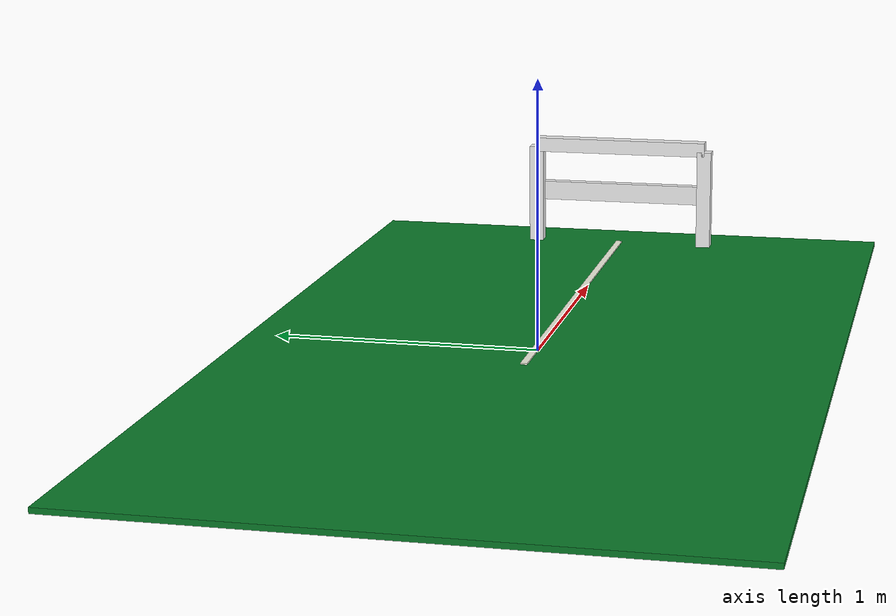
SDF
<?xml version="1.0"?>
<sdf version="1.8">
  <world name="footbot_world">
    <gravity>0 0 -9.81</gravity>
    <magnetic_field>0 0 0</magnetic_field>
    <atmosphere type="adiabatic"/>

    <plugin filename="ignition-gazebo-physics-system" name="ignition::gazebo::systems::Physics"/>
    <plugin filename="libfootbot_ball_drag_system.so" name="footbot_gazebo::BallDragSystem">
      <link_name>ball_link</link_name>
      <linear_damping>0.18</linear_damping>
      <angular_damping>0.0012</angular_damping>
      <max_force>0.30</max_force>
      <max_torque>0.015</max_torque>
      <stop_linear_speed>0.02</stop_linear_speed>
      <stop_angular_speed>0.35</stop_angular_speed>
    </plugin>
    <plugin filename="ignition-gazebo-user-commands-system" name="ignition::gazebo::systems::UserCommands"/>
    <plugin filename="ignition-gazebo-scene-broadcaster-system" name="ignition::gazebo::systems::SceneBroadcaster"/>
    <plugin filename="ignition-gazebo-sensors-system" name="ignition::gazebo::systems::Sensors">
      <render_engine>ogre2</render_engine>
    </plugin>

    <physics name="default_physics" type="ignored">
      <max_step_size>0.001</max_step_size>
      <real_time_factor>1.0</real_time_factor>
    </physics>

    <scene>
      <ambient>0.62 0.62 0.62 1.0</ambient>
      <background>0.74 0.80 0.86 1.0</background>
      <shadows>true</shadows>
    </scene>

    <light name="sun" type="directional">
      <cast_shadows>true</cast_shadows>
      <pose>0 0 6 0 0 0</pose>
      <diffuse>0.92 0.92 0.92 1</diffuse>
      <specular>0.20 0.20 0.20 1</specular>
      <attenuation>
        <range>1000</range>
        <constant>0.9</constant>
        <linear>0.01</linear>
        <quadratic>0.001</quadratic>
      </attenuation>
      <direction>-0.35 0.18 -0.9</direction>
    </light>

    <model name="reach_goal_field">
      <static>true</static>
      <link name="field_link">
        <collision name="field_collision">
          <geometry>
            <box>
              <size>4.00 2.20 0.02</size>
            </box>
          </geometry>
        </collision>
        <visual name="field_turf">
          <pose>0 0 0.001 0 0 0</pose>
          <geometry>
            <box>
              <size>4.00 2.20 0.02</size>
            </box>
          </geometry>
          <material>
            <ambient>0.04 0.36 0.12 1</ambient>
            <diffuse>0.04 0.48 0.16 1</diffuse>
          </material>
        </visual>
        <visual name="center_lane">
          <pose>0.75 0 0.018 0 0 0</pose>
          <geometry>
            <box>
              <size>2.00 0.025 0.006</size>
            </box>
          </geometry>
          <material>
            <ambient>0.95 0.95 0.88 1</ambient>
            <diffuse>0.95 0.95 0.88 1</diffuse>
          </material>
        </visual>
      </link>
    </model>

    <model name="target_goal">
      <static>true</static>
      <pose>1.75 0 0 0 0 0</pose>
      <link name="goal_link">
        <collision name="goal_back_collision">
          <pose>0.05 0 0.23 0 0 0</pose>
          <geometry>
            <box>
              <size>0.04 0.74 0.08</size>
            </box>
          </geometry>
        </collision>
        <visual name="back_bar">
          <pose>0.05 0 0.23 0 0 0</pose>
          <geometry>
            <box>
              <size>0.04 0.74 0.08</size>
            </box>
          </geometry>
          <material>
            <ambient>0.95 0.95 0.95 1</ambient>
            <diffuse>0.95 0.95 0.95 1</diffuse>
          </material>
        </visual>
        <visual name="top_bar">
          <pose>0.02 0 0.44 0 0 0</pose>
          <geometry>
            <box>
              <size>0.06 0.74 0.06</size>
            </box>
          </geometry>
          <material>
            <ambient>0.95 0.95 0.95 1</ambient>
            <diffuse>0.95 0.95 0.95 1</diffuse>
          </material>
        </visual>
        <visual name="left_post">
          <pose>0.02 0.37 0.22 0 0 0</pose>
          <geometry>
            <box>
              <size>0.06 0.06 0.42</size>
            </box>
          </geometry>
          <material>
            <ambient>0.95 0.95 0.95 1</ambient>
            <diffuse>0.95 0.95 0.95 1</diffuse>
          </material>
        </visual>
        <visual name="right_post">
          <pose>0.02 -0.37 0.22 0 0 0</pose>
          <geometry>
            <box>
              <size>0.06 0.06 0.42</size>
            </box>
          </geometry>
          <material>
            <ambient>0.95 0.95 0.95 1</ambient>
            <diffuse>0.95 0.95 0.95 1</diffuse>
          </material>
        </visual>
      </link>
    </model>
  </world>
</sdf>
